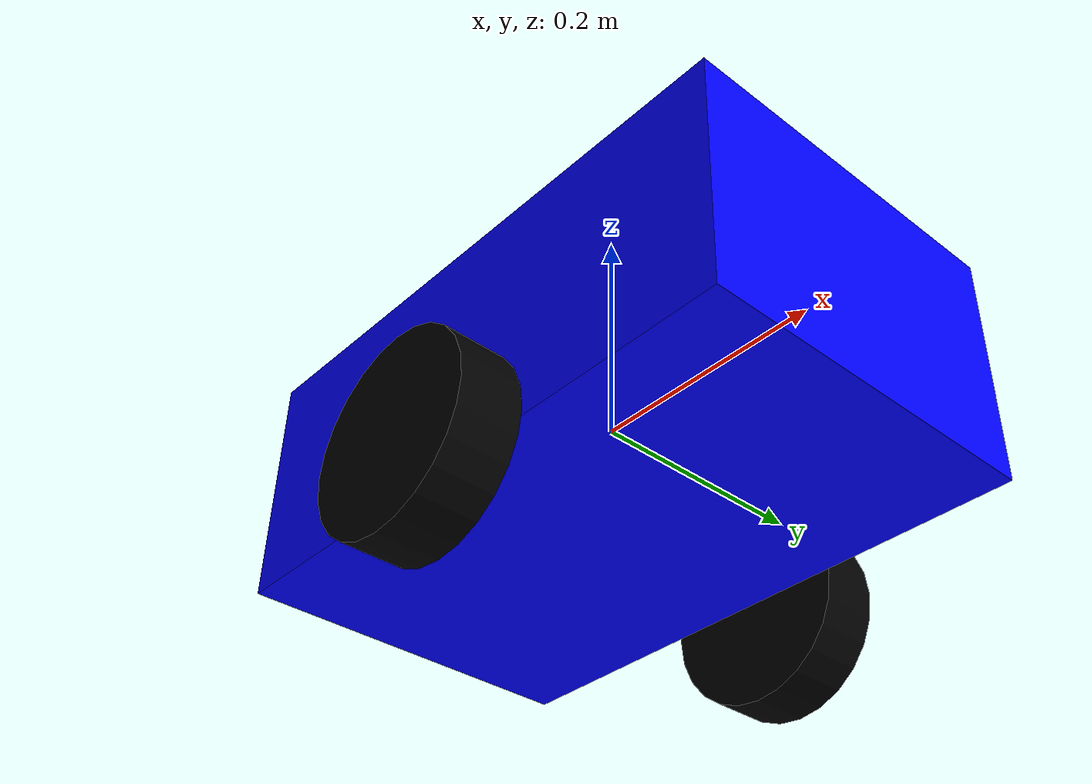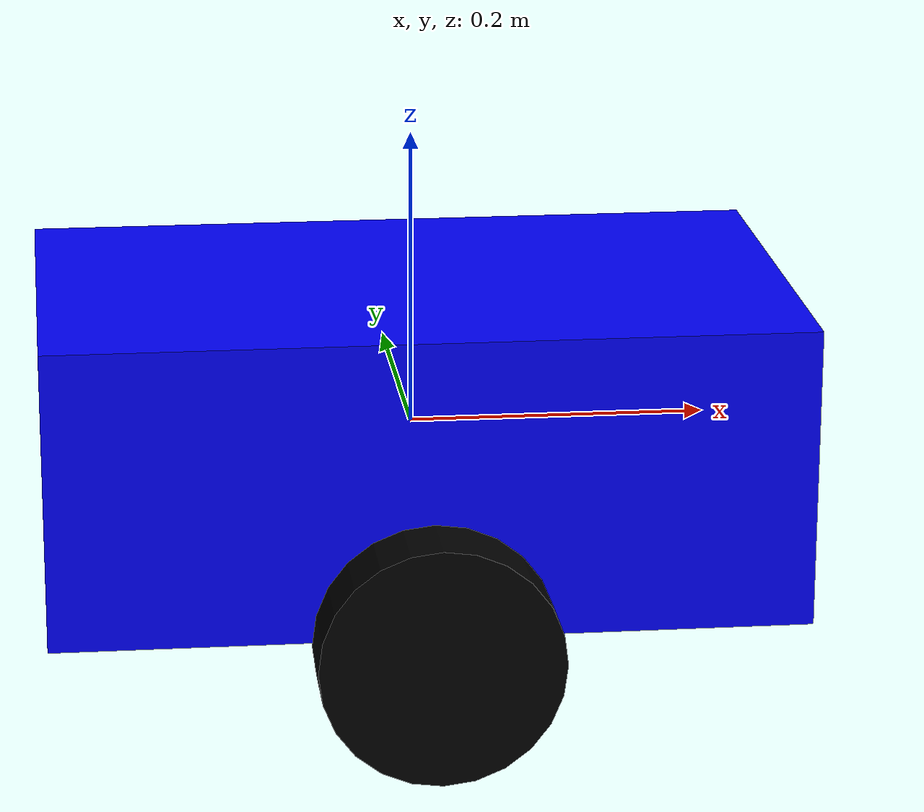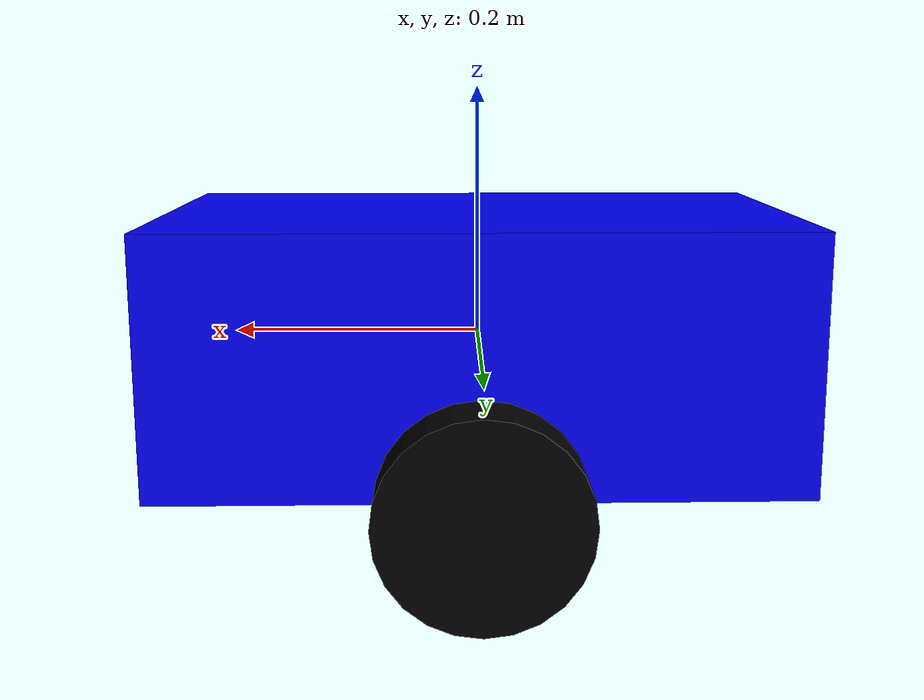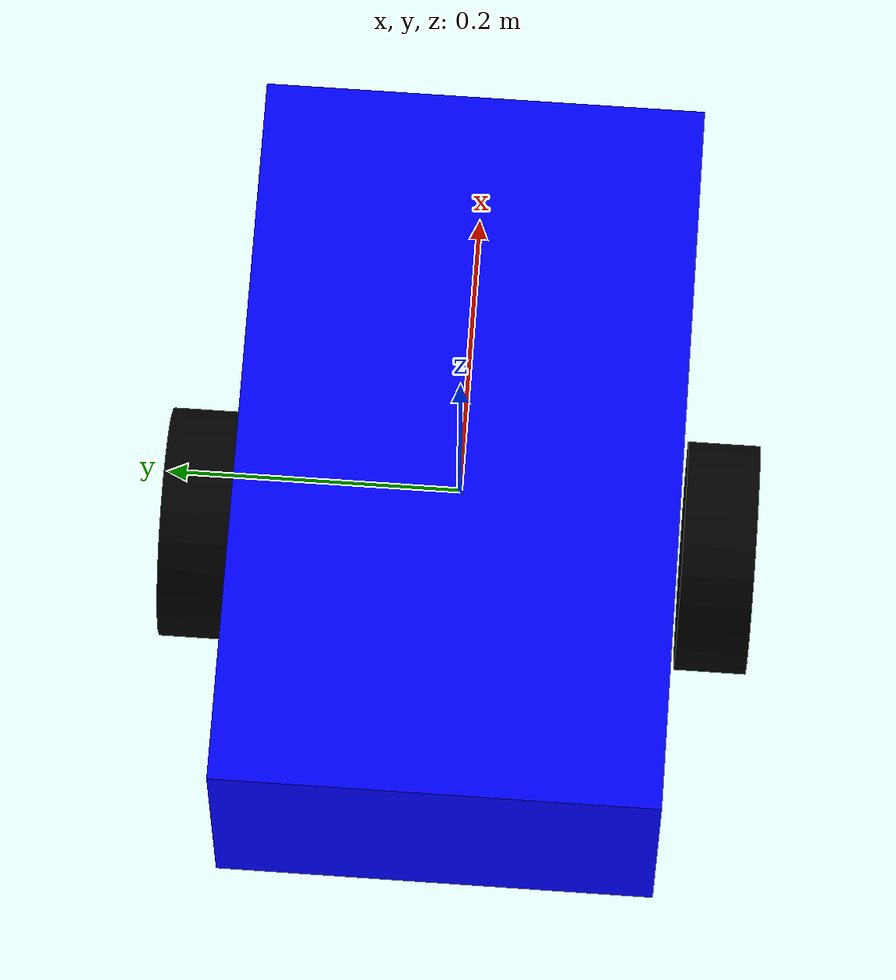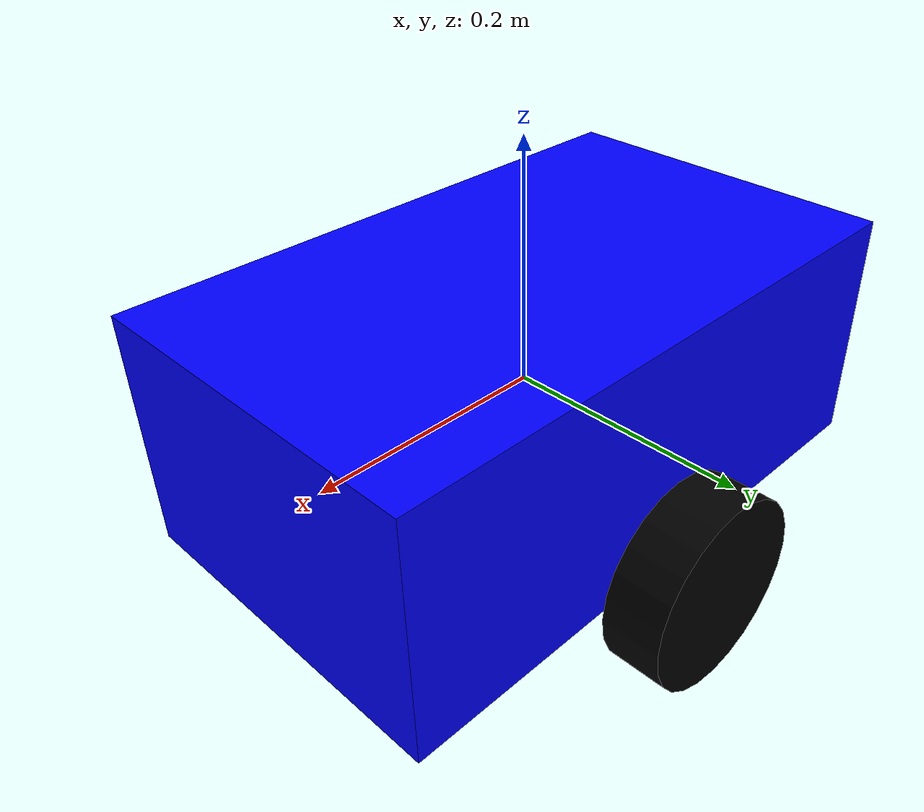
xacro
<?xml version="1.0"?>
<robot name="my_robot" xmlns:xacro="http://ros.org/wiki/xacro">

  <!-- Base link -->
  <link name="base_link">
    <visual>
      <geometry>
        <box size="0.5 0.3 0.2"/>
      </geometry>
      <material name="blue">
        <color rgba="0 0 1 1"/>
      </material>
    </visual>
    <collision>
      <geometry>
        <box size="0.5 0.3 0.2"/>
      </geometry>
    </collision>
  </link>

  <!-- Left wheel -->
  <link name="left_wheel">
    <visual>
      <geometry>
        <cylinder length="0.05" radius="0.08"/>
      </geometry>
      <material name="black">
        <color rgba="0 0 0 1"/>
      </material>
    </visual>
  </link>

  <!-- Right wheel -->
  <link name="right_wheel">
    <visual>
      <geometry>
        <cylinder length="0.05" radius="0.08"/>
      </geometry>
      <material name="black">
        <color rgba="0 0 0 1"/>
      </material>
    </visual>
  </link>

  <!-- Joints -->
  <joint name="left_wheel_joint" type="continuous">
    <parent link="base_link"/>
    <child link="left_wheel"/>
    <origin xyz="0 -0.18 -0.1" rpy="1.57 1.57 0"/>
    <axis xyz="0 1 0"/>
  </joint>

  <joint name="right_wheel_joint" type="continuous">
    <parent link="base_link"/>
    <child link="right_wheel"/>
    <origin xyz="0 0.18 -0.1" rpy="1.57 1.57 0"/>
    <axis xyz="0 1 0"/>
  </joint>

</robot>
